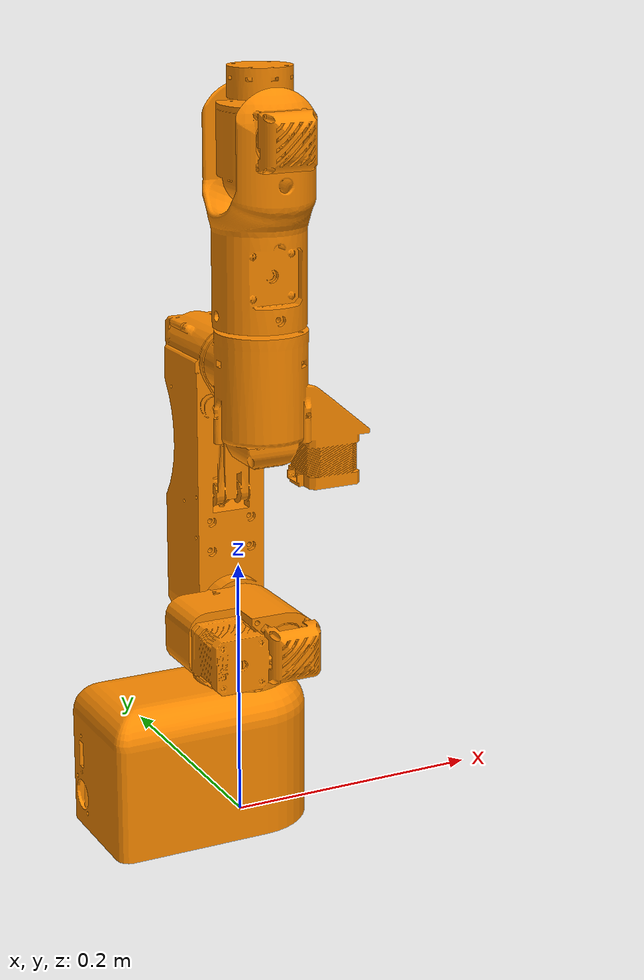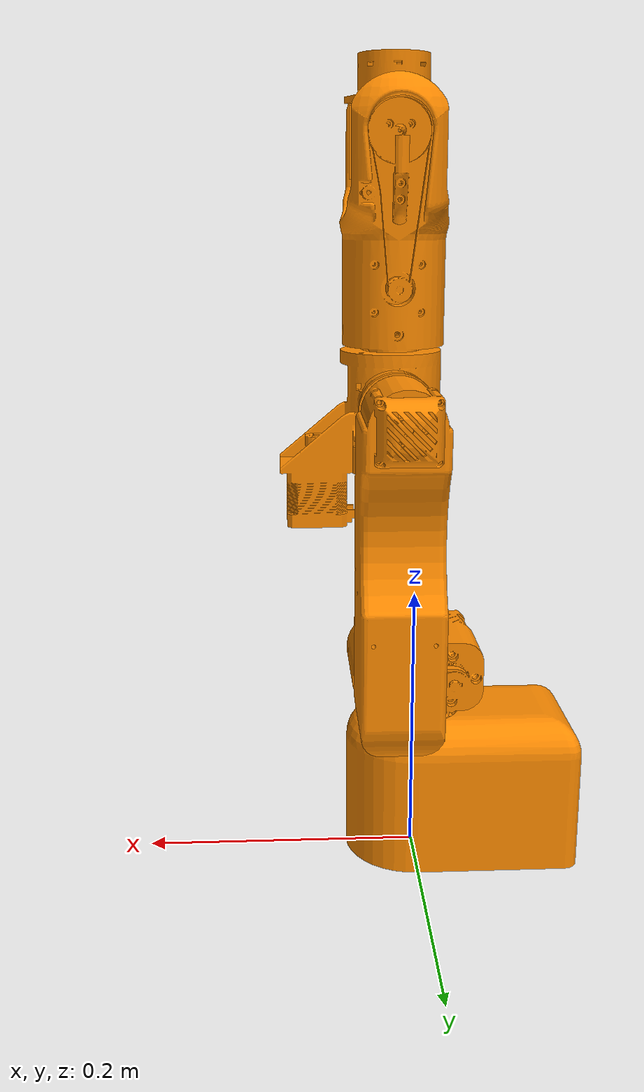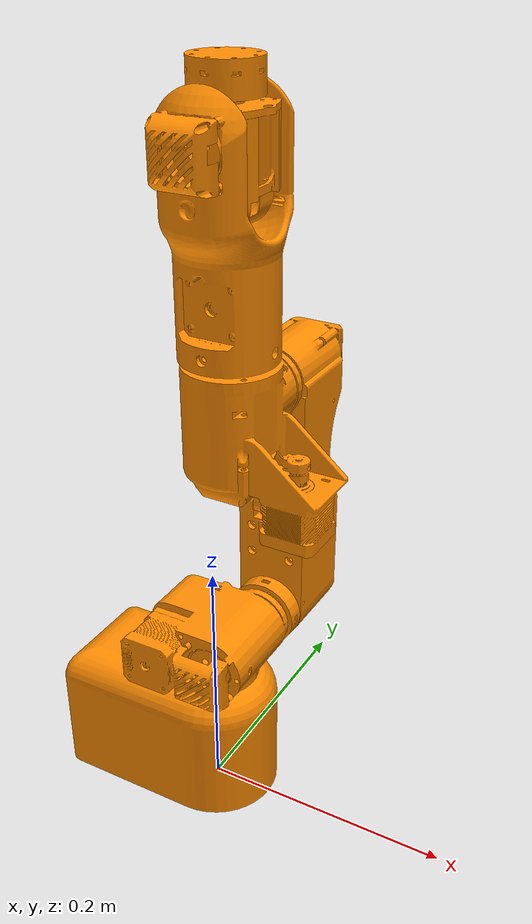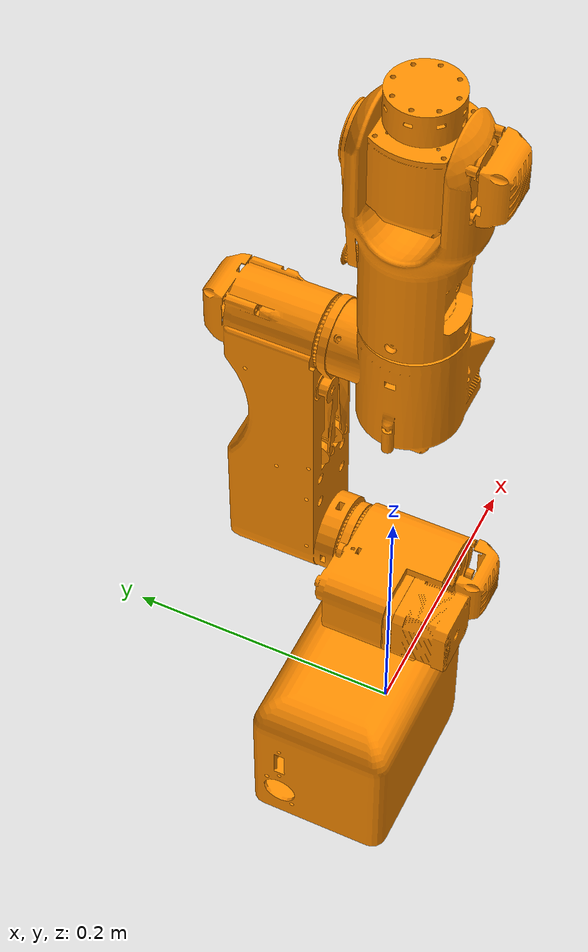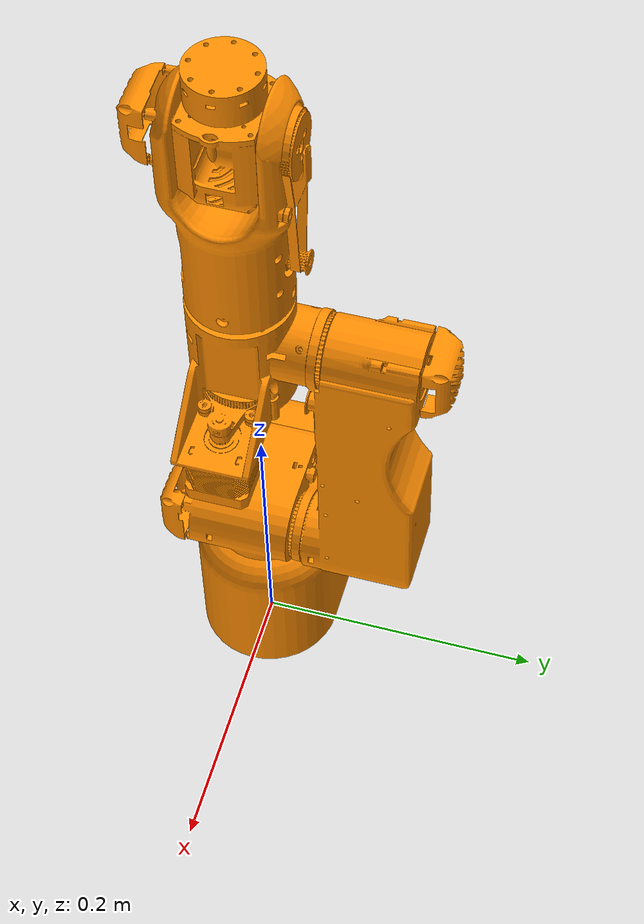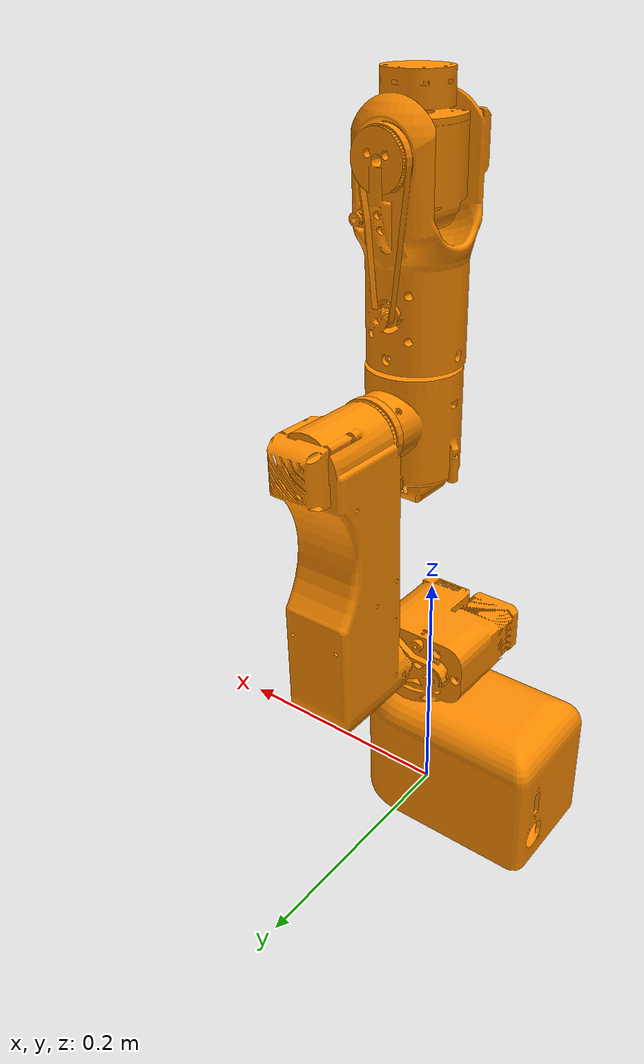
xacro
<robot name="helene" xmlns:xacro="http://www.ros.org/wiki/xacro" xmlns:xi="http://www.w3.org/2001/XInclude">

<!-- Definition of Pi for easier rotation of end effectors -->
<xacro:property name="PI" value="3.1415926535897931"/>

<xacro:arg name="end_effector" default=""/>
<xacro:arg name="end_effector_package" default="$(arg end_effector)"/>

<xacro:property name="end_effector_name" value="$(arg end_effector)"/>
<xacro:property name="package" value="$(arg end_effector_package)"/>

<!-- helene urdf file -->
<xacro:include filename="$(find hw_description)/urdf/helene_hw.urdf"/>

<!-- end effector xacro file -->
<xacro:unless value="${end_effector_name == ''}">
    <xacro:include filename="$(find ${end_effector_name})/urdf/${end_effector_name}.urdf.xacro"/>
</xacro:unless>

</robot>

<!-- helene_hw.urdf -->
<robot name="helene">
    <link name="world" />

  <joint name="world_to_base_link" type="fixed">
    <parent link="world"/>
    <child link="base_link"/>
  </joint>
    <link name="base_link">
        <visual>
            <geometry>
                <mesh filename="package://hw_description/meshes/Komponente1.stl" scale="0.001 0.001 0.001" />
            </geometry>
            <material name="gold">
                <color rgba="1 0.549 0 1" />
            </material>
        </visual>
        <collision>
            <geometry>
                <mesh filename="package://hw_description/meshes/Komponente1.stl" scale="0.001 0.001 0.001" />
            </geometry>
        </collision>

<inertial>
            <mass value="0.8" />
            <inertia ixx="1e-3" ixy="1e-3" ixz="1e-3" iyy="1e-3" iyz="1e-3" izz="1e-3" />
        </inertial>

    </link>
    <link name="axis_0">
        <visual>
            <geometry>
                <mesh filename="package://hw_description/meshes/Komponente2.stl" scale="0.001 0.001 0.001" />
            </geometry>
            <material name="gold">
                <color rgba="1 0.549 0 1" />
            </material>
            <origin rpy="0 0 0" xyz="0 0 0" />
        </visual>
        <collision>
            <geometry>
                <mesh filename="package://hw_description/meshes/Komponente2.stl" scale="0.001 0.001 0.001" />
            </geometry>
        </collision>

<inertial>
            <mass value="0.8" />
            <inertia ixx="1e-3" ixy="1e-3" ixz="1e-3" iyy="1e-3" iyz="1e-3" izz="1e-3" />
        </inertial>

    </link>
    <joint name="q1" type="revolute">
        <axis xyz="0 0 1" />
        <limit effort="1000.0" lower="-2.79" upper="2.79" velocity="5" />
        <origin rpy="0 0 0" xyz="0 0 0" />
        <parent link="base_link" />
        <child link="axis_0" />
    </joint>
    <link name="axis_1">
        <visual>
            <geometry>
                <mesh filename="package://hw_description/meshes/Komponente3.stl" scale="0.001 0.001 0.001" />
            </geometry>
            <material name="gold">
                <color rgba="1 0.549 0 1" />
            </material>
            <origin rpy="0 0 0" xyz="0 0 0" />
        </visual>
        <collision>
            <geometry>
                <mesh filename="package://hw_description/meshes/Komponente3.stl" scale="0.001 0.001 0.001" />
            </geometry>
        </collision>

<inertial>
            <mass value="0.8" />
            <inertia ixx="1e-3" ixy="1e-3" ixz="1e-3" iyy="1e-3" iyz="1e-3" izz="1e-3" />
        </inertial>

    </link>
    <joint name="q2" type="revolute">
        <axis xyz="0 0 1" />
        <limit effort="1000.0" lower="-1.83" upper="1.83" velocity="5" />
        <origin rpy="-1.571 0 0" xyz="0.02 0 0.145" />
        <parent link="axis_0" />
        <child link="axis_1" />
    </joint>
    <link name="axis_2">
        <visual>
            <geometry>
                <mesh filename="package://hw_description/meshes/Komponente4.stl" scale="0.001 0.001 0.001" />
            </geometry>
            <material name="gold">
                <color rgba="1 0.549 0 1" />
            </material>
            <origin rpy="0 0 0" xyz="0 0 0" />
        </visual>
        <collision>
            <geometry>
                <mesh filename="package://hw_description/meshes/Komponente4.stl" scale="0.001 0.001 0.001" />
            </geometry>
        </collision>

<inertial>
            <mass value="0.8" />
            <inertia ixx="1e-3" ixy="1e-3" ixz="1e-3" iyy="1e-3" iyz="1e-3" izz="1e-3" />
        </inertial>

    </link>
    <joint name="q3" type="revolute">
        <axis xyz="0 0 1" />
        <limit effort="1000.0" lower="0" upper="2.7925" velocity="5" />
        <origin rpy="0 0 3.141" xyz="0 -0.200 0" />
        <parent link="axis_1" />
        <child link="axis_2" />
    </joint>
    <link name="axis_3">
        <visual>
            <geometry>
                <mesh filename="package://hw_description/meshes/Komponente5.stl" scale="0.001 0.001 0.001" />
            </geometry>
            <material name="gold">
                <color rgba="1 0.549 0 1" />
            </material>
            <origin rpy="0 0 0" xyz="0 0 0" />
        </visual>
        <collision>
            <geometry>
                <mesh filename="package://hw_description/meshes/Komponente5.stl" scale="0.001 0.001 0.001" />
            </geometry>
        </collision>

<inertial>
            <mass value="0.8" />
            <inertia ixx="1e-3" ixy="1e-3" ixz="1e-3" iyy="1e-3" iyz="1e-3" izz="1e-3" />
        </inertial>

    </link>
    <joint name="q4" type="revolute">
        <axis xyz="0 0 1" />
        <limit effort="1000.0" lower="-2.9" upper="2.9" velocity="5" />
        <origin rpy="-1.571 0 0" xyz="0 0 0" />
        <parent link="axis_2" />
        <child link="axis_3" />
    </joint>
    <link name="axis_4">
        <visual>
            <geometry>
                <mesh filename="package://hw_description/meshes/Komponente6.stl" scale="0.001 0.001 0.001" />
            </geometry>
            <material name="gold">
                <color rgba="1 0.549 0 1" />
            </material>
            <origin rpy="0 0 0" xyz="0 0 0" />
        </visual>
        <collision>
            <geometry>
                <mesh filename="package://hw_description/meshes/Komponente6.stl" scale="0.001 0.001 0.001" />
            </geometry>
        </collision>

<inertial>
            <mass value="0.8" />
            <inertia ixx="1e-3" ixy="1e-3" ixz="1e-3" iyy="1e-3" iyz="1e-3" izz="1e-3" />
        </inertial>

    </link>
    <joint name="q5" type="revolute">
        <axis xyz="0 0 1" />
        <limit effort="1000.0" lower="-2.7" upper="2.7" velocity="5" />
        <origin rpy="1.571 0 0" xyz="0 0 0.177" />
        <parent link="axis_3" />
        <child link="axis_4" />
    </joint>
    <link name="axis_5">
        <visual>
            <geometry>
                <mesh filename="package://hw_description/meshes/Flansch.stl" scale="0.001 0.001 0.001" />
            </geometry>
            <material name="gold">
                <color rgba="1 0.549 0 1" />
            </material>
            <origin rpy="0 0 0" xyz="0 0 0" />
        </visual>
        <collision>
            <geometry>
                <mesh filename="package://hw_description/meshes/Flansch.stl" scale="0.001 0.001 0.001" />
            </geometry>
        </collision>

<inertial>
            <mass value="0.8" />
            <inertia ixx="1e-3" ixy="1e-3" ixz="1e-3" iyy="1e-3" iyz="1e-3" izz="1e-3" />
        </inertial>

    </link>
    <joint name="q6" type="revolute">
        <axis xyz="0 0 1" />
        <limit effort="1000.0" lower="-3.141" upper="3.141" velocity="5" />
        <origin rpy="-1.571 0 0" xyz="0 0 0" />
        <parent link="axis_4" />
        <child link="axis_5" />
    </joint>
    <link name="axis_6">
        <visual>
            <geometry>
                <cylinder length="0" radius="0" />
            </geometry>
            <origin rpy="0 0 0" xyz="0 0 0" />
        </visual>
        <collision>
            <geometry>
                <cylinder length="0" radius="0" />
            </geometry>
        </collision>
    </link>
    <joint name="q7" type="fixed">
        <axis xyz="0 0 1" />
        <origin rpy="0 0 0" xyz="0 0 0.05" />
        <parent link="axis_5" />
        <child link="axis_6" />
    </joint>

<transmission name="trans_q1">
        <type>transmission_interface/SimpleTransmission</type>
        <joint name="q1">
            <hardwareInterface>hardware_interface/EffortJointInterface</hardwareInterface>
        </joint>
        <actuator name="q1_motor">
            <hardwareInterface>hardware_interface/EffortJointInterface</hardwareInterface>
            <mechanicalReduction>1</mechanicalReduction>
        </actuator>
    </transmission>
    <transmission name="trans_q2">
        <type>transmission_interface/SimpleTransmission</type>
        <joint name="q2">
            <hardwareInterface>hardware_interface/EffortJointInterface</hardwareInterface>
        </joint>
        <actuator name="q2_motor">
            <hardwareInterface>hardware_interface/EffortJointInterface</hardwareInterface>
            <mechanicalReduction>1</mechanicalReduction>
        </actuator>
    </transmission>
    <transmission name="trans_q3">
        <type>transmission_interface/SimpleTransmission</type>
        <joint name="q3">
            <hardwareInterface>hardware_interface/EffortJointInterface</hardwareInterface>
        </joint>
        <actuator name="q3_motor">
            <hardwareInterface>hardware_interface/EffortJointInterface</hardwareInterface>
            <mechanicalReduction>1</mechanicalReduction>
        </actuator>
    </transmission>
    <transmission name="trans_q4">
        <type>transmission_interface/SimpleTransmission</type>
        <joint name="q4">
            <hardwareInterface>hardware_interface/EffortJointInterface</hardwareInterface>
        </joint>
        <actuator name="q4_motor">
            <hardwareInterface>hardware_interface/EffortJointInterface</hardwareInterface>
            <mechanicalReduction>1</mechanicalReduction>
        </actuator>
    </transmission>
    <transmission name="trans_q5">
        <type>transmission_interface/SimpleTransmission</type>
        <joint name="q5">
            <hardwareInterface>hardware_interface/EffortJointInterface</hardwareInterface>
        </joint>
        <actuator name="q5_motor">
            <hardwareInterface>hardware_interface/EffortJointInterface</hardwareInterface>
            <mechanicalReduction>1</mechanicalReduction>
        </actuator>
    </transmission>
    <transmission name="trans_q6">
        <type>transmission_interface/SimpleTransmission</type>
        <joint name="q6">
            <hardwareInterface>hardware_interface/EffortJointInterface</hardwareInterface>
        </joint>
        <actuator name="q6_motor">
            <hardwareInterface>hardware_interface/EffortJointInterface</hardwareInterface>
            <mechanicalReduction>1</mechanicalReduction>
        </actuator>
    </transmission>
    <gazebo>
        <plugin name="gazebo_ros_control" filename="libgazebo_ros_control.so">
            <robotNamespace>/helene</robotNamespace>
        </plugin>
    </gazebo>
    <transmission name="trans_q1">
        <type>transmission_interface/SimpleTransmission</type>
        <joint name="q1">
            <hardwareInterface>hardware_interface/EffortJointInterface</hardwareInterface>
        </joint>
        <actuator name="q1_motor">
            <hardwareInterface>hardware_interface/EffortJointInterface</hardwareInterface>
            <mechanicalReduction>1</mechanicalReduction>
        </actuator>
    </transmission>
    <transmission name="trans_q2">
        <type>transmission_interface/SimpleTransmission</type>
        <joint name="q2">
            <hardwareInterface>hardware_interface/EffortJointInterface</hardwareInterface>
        </joint>
        <actuator name="q2_motor">
            <hardwareInterface>hardware_interface/EffortJointInterface</hardwareInterface>
            <mechanicalReduction>1</mechanicalReduction>
        </actuator>
    </transmission>
    <transmission name="trans_q3">
        <type>transmission_interface/SimpleTransmission</type>
        <joint name="q3">
            <hardwareInterface>hardware_interface/EffortJointInterface</hardwareInterface>
        </joint>
        <actuator name="q3_motor">
            <hardwareInterface>hardware_interface/EffortJointInterface</hardwareInterface>
            <mechanicalReduction>1</mechanicalReduction>
        </actuator>
    </transmission>
    <transmission name="trans_q4">
        <type>transmission_interface/SimpleTransmission</type>
        <joint name="q4">
            <hardwareInterface>hardware_interface/EffortJointInterface</hardwareInterface>
        </joint>
        <actuator name="q4_motor">
            <hardwareInterface>hardware_interface/EffortJointInterface</hardwareInterface>
            <mechanicalReduction>1</mechanicalReduction>
        </actuator>
    </transmission>
    <transmission name="trans_q5">
        <type>transmission_interface/SimpleTransmission</type>
        <joint name="q5">
            <hardwareInterface>hardware_interface/EffortJointInterface</hardwareInterface>
        </joint>
        <actuator name="q5_motor">
            <hardwareInterface>hardware_interface/EffortJointInterface</hardwareInterface>
            <mechanicalReduction>1</mechanicalReduction>
        </actuator>
    </transmission>
    <transmission name="trans_q6">
        <type>transmission_interface/SimpleTransmission</type>
        <joint name="q6">
            <hardwareInterface>hardware_interface/EffortJointInterface</hardwareInterface>
        </joint>
        <actuator name="q6_motor">
            <hardwareInterface>hardware_interface/EffortJointInterface</hardwareInterface>
            <mechanicalReduction>1</mechanicalReduction>
        </actuator>
    </transmission>
    <gazebo>
        <plugin name="gazebo_ros_control" filename="libgazebo_ros_control.so">
            <robotNamespace>/</robotNamespace>
        </plugin>
    </gazebo>
</robot>
